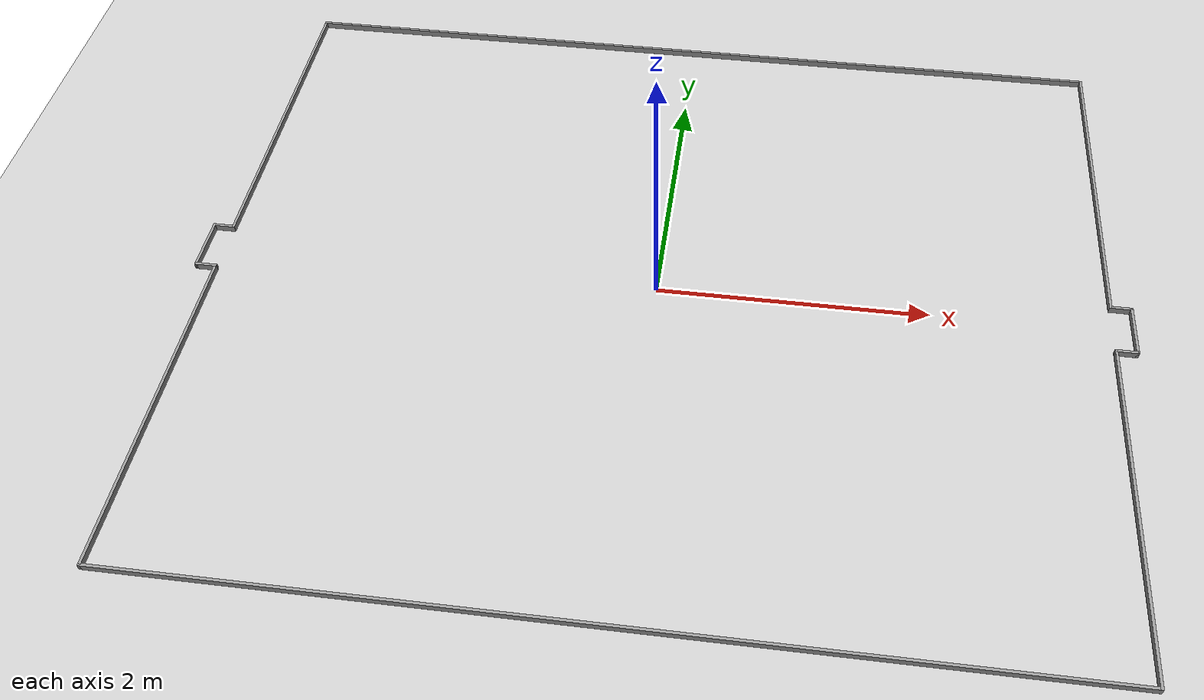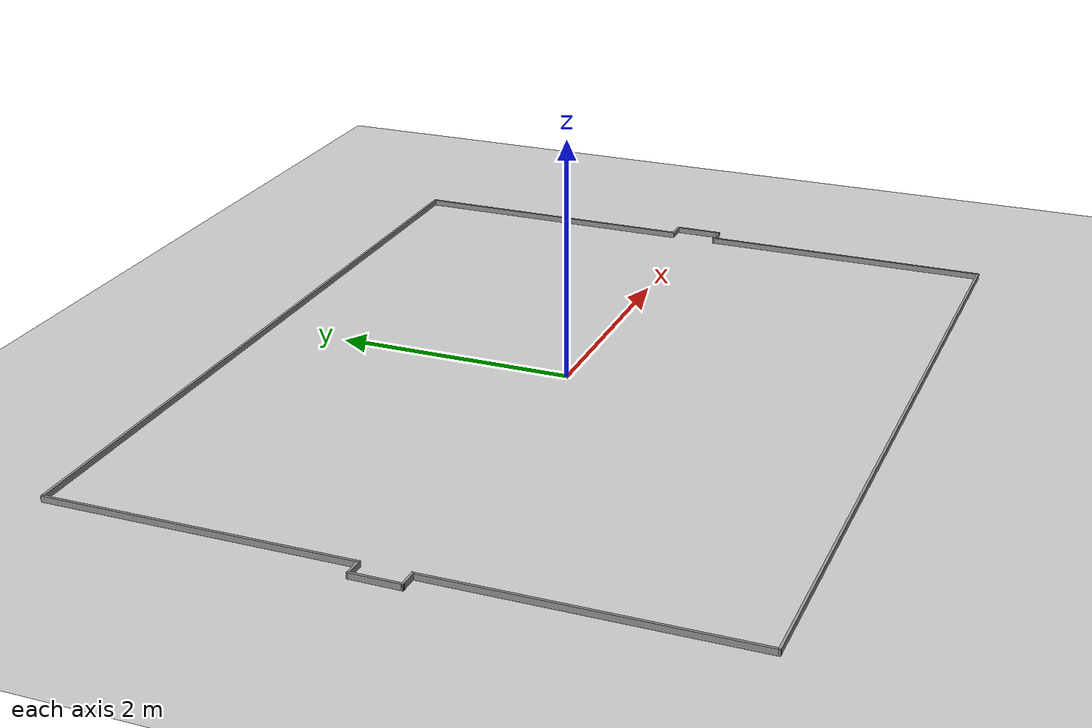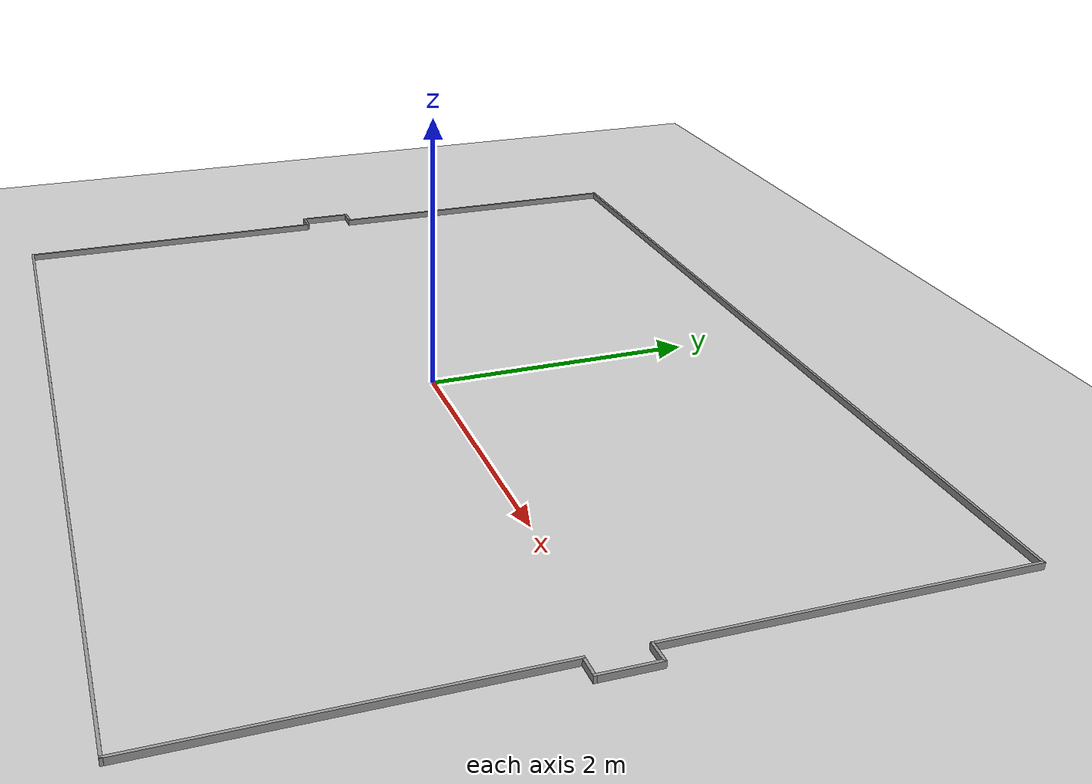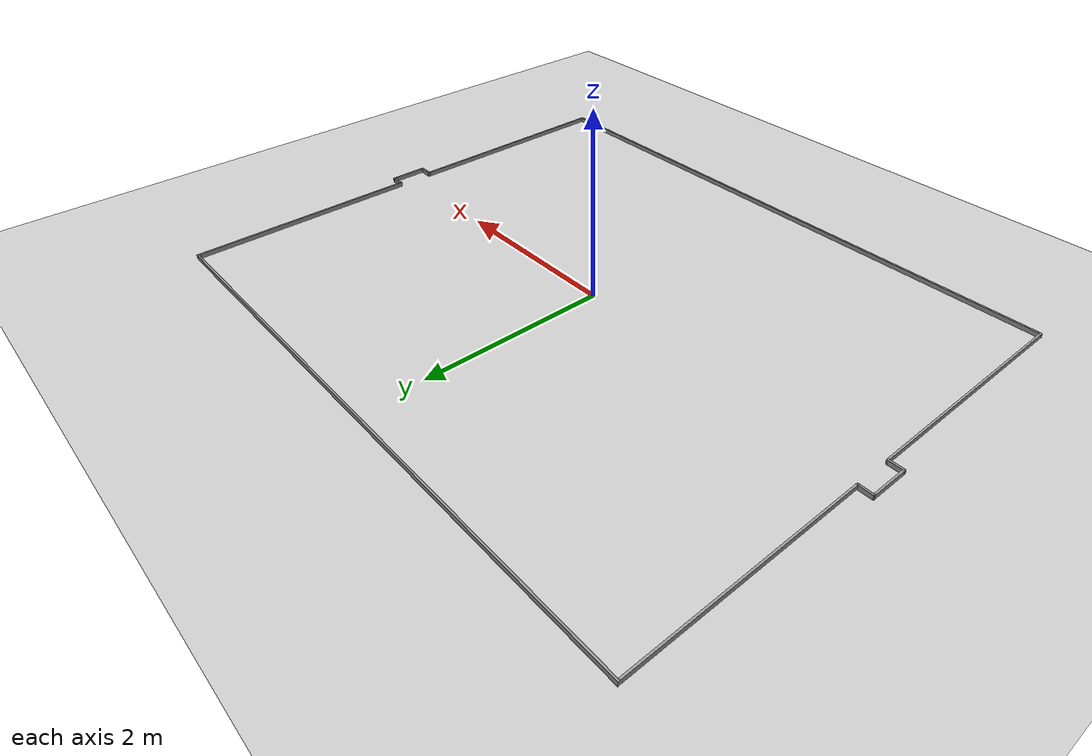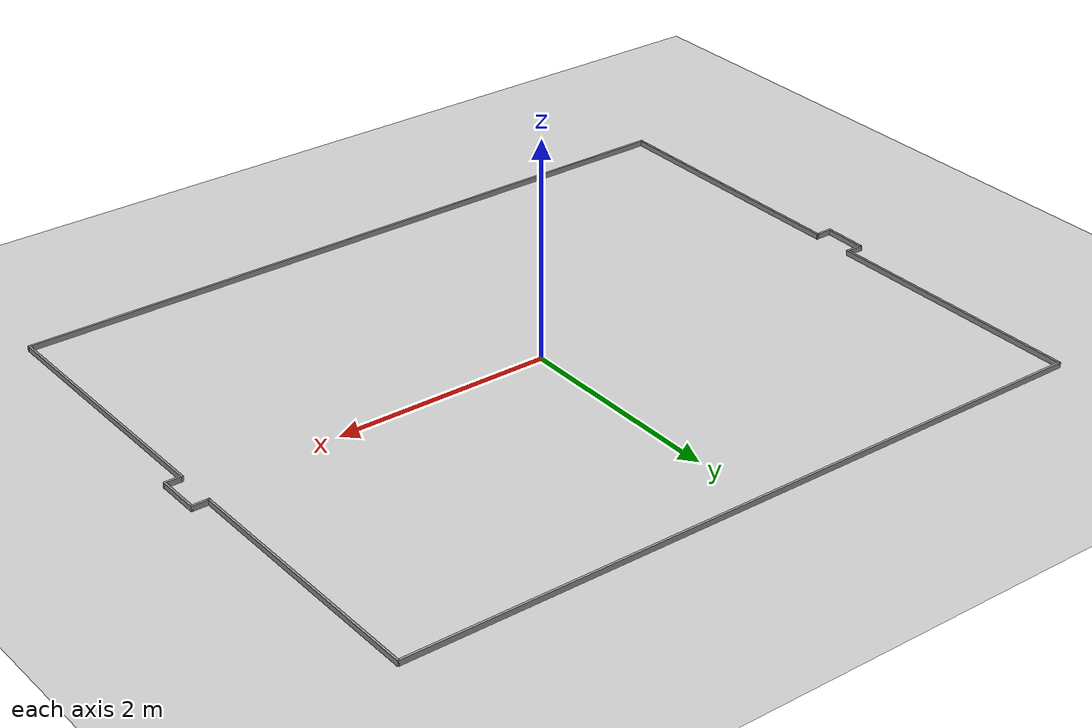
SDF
<?xml version="1.0"?>
<sdf version='1.6'>
  <world name='vsss_environment'>

    <!-- Fonte de luz -->
    <light name='sun' type='directional'>
      <cast_shadows>0</cast_shadows>
      <pose frame=''>0 0 10 0 -0 0</pose>
      <diffuse>0.8 0.8 0.8 1</diffuse>
      <specular>0.2 0.2 0.2 1</specular>

      <attenuation>
        <range>1000</range>
        <constant>0.9</constant>
        <linear>0.01</linear>
        <quadratic>0.001</quadratic>
      </attenuation>

      <direction>-0.5 0.1 -0.9</direction>
    </light>

    <!-- Interface -->
    <gui fullscreen='0'>
      <camera name='user_camera'>
        <pose frame=''>0 -0.2 2.5 0 1.50 1.57</pose>
        <view_controller>orbit</view_controller>
        <projection_type>perspective</projection_type>
      </camera>
    </gui>

    <!-- Terreno plano -->
    <model name='ground_plane'>
      <static>1</static>
      <link name='link'>
        <collision name='collision'>
          <geometry>
            <plane>
              <normal>0 0 1</normal>
              <size>100 100</size>
            </plane>
          </geometry>
          <surface>
            <friction>
              <ode>
                <mu>0.5</mu>
                <mu2>0.5</mu2>
              </ode>
              <torsional>
                <ode/>
              </torsional>
            </friction>
            <contact>
              <ode/>
            </contact>
            <bounce/>
          </surface>
          <max_contacts>10</max_contacts>
        </collision>
        <visual name='visual'>
          <cast_shadows>0</cast_shadows>
          <geometry>
            <plane>
              <normal>0 0 1</normal>
              <size>100 100</size>
            </plane>
          </geometry>
          <material>
            <script>
              <uri>file://media/materials/scripts/gazebo.material</uri>
              <name>Gazebo/Gray</name>
            </script>
          </material>
        </visual>
        <self_collide>0</self_collide>
        <enable_wind>0</enable_wind>
        <kinematic>0</kinematic>
      </link>
    </model>

    <gravity>0 0 -9.8</gravity>
    <magnetic_field>6e-06 2.3e-05 -4.2e-05</magnetic_field>
    <atmosphere type='adiabatic'/>

    <physics name='default_physics' default='0' type='ode'>
      <max_step_size>0.001</max_step_size>
      <real_time_factor>1</real_time_factor>
      <real_time_update_rate>1000</real_time_update_rate>
    </physics>

    <scene>
      <ambient>0.4 0.4 0.4 1</ambient>
      <background>0.7 0.7 0.7 1</background>
      <shadows>0</shadows>
    </scene>

    <spherical_coordinates>
      <surface_model>EARTH_WGS84</surface_model>
      <latitude_deg>0</latitude_deg>
      <longitude_deg>0</longitude_deg>
      <elevation>0</elevation>
      <heading_deg>0</heading_deg>
    </spherical_coordinates>

    <!-- IEEE Very Small Size Soccer Field -->
    <include>
        <pose>0 0 0 0 0 0</pose>
        <uri>model://vsss_field_goal</uri>
        <name>field_walls</name>
        <static>true</static>
    </include>

    <!-- IEEE Very Small Size Soccer Ball -->
    <include>
        <pose>0 1 0 0 0 0</pose>
        <uri>model://vsss_ball</uri>
        <name>ball</name>
        <static>false</static>
    </include>

  </world>
</sdf>

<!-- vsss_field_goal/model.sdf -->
<sdf version='1.6'>
  <model name='vsss_field_goal'>
    <pose frame=''>-0.001537 -5e-06 0 0 -0 0</pose>
    <link name='Wall_0'>
      <collision name='Wall_0_Collision'>
        <geometry>
          <box>
            <size>6.62 0.02 0.05</size>
          </box>
        </geometry>
        <pose frame=''>0 0 0.025 0 -0 0</pose>
      </collision>
      <visual name='Wall_0_Visual'>
        <pose frame=''>0 0 0.025 0 -0 0</pose>
        <geometry>
          <box>
            <size>6.62 0.02 0.05</size>
          </box>
        </geometry>
        <material>
          <script>
            <uri>file://media/materials/scripts/gazebo.material</uri>
            <name>Gazebo/Grey</name>
          </script>
          <ambient>1 1 1 1</ambient>
        </material>
        <meta>
          <layer>0</layer>
        </meta>
      </visual>
      <pose frame=''>0.001537 2.70001 0 0 -0 0</pose>
    </link>
    <link name='Wall_1'>
      <collision name='Wall_1_Collision'>
        <geometry>
          <box>
            <size>2.52 0.02 0.05</size>
          </box>
        </geometry>
        <pose frame=''>0 0 0.025 0 -0 0</pose>
      </collision>
      <visual name='Wall_1_Visual'>
        <pose frame=''>0 0 0.025 0 -0 0</pose>
        <geometry>
          <box>
            <size>2.52 0.02 0.05</size>
          </box>
        </geometry>
        <material>
          <script>
            <uri>file://media/materials/scripts/gazebo.material</uri>
            <name>Gazebo/Grey</name>
          </script>
          <ambient>1 1 1 1</ambient>
        </material>
        <meta>
          <layer>0</layer>
        </meta>
      </visual>
      <pose frame=''>3.30154 1.45001 0 0 -0 -1.5708</pose>
    </link>
    <link name='Wall_10'>
      <collision name='Wall_10_Collision'>
        <geometry>
          <box>
            <size>0.17 0.02 0.05</size>
          </box>
        </geometry>
        <pose frame=''>0 0 0.025 0 -0 0</pose>
      </collision>
      <visual name='Wall_10_Visual'>
        <pose frame=''>0 0 0.025 0 -0 0</pose>
        <geometry>
          <box>
            <size>0.17 0.02 0.05</size>
          </box>
        </geometry>
        <material>
          <script>
            <uri>file://media/materials/scripts/gazebo.material</uri>
            <name>Gazebo/Grey</name>
          </script>
          <ambient>1 1 1 1</ambient>
        </material>
        <meta>
          <layer>0</layer>
        </meta>
      </visual>
      <pose frame=''>-3.37346 0.200005 0 0 -0 0</pose>
    </link>
    <link name='Wall_11'>
      <collision name='Wall_11_Collision'>
        <geometry>
          <box>
            <size>2.52 0.02 0.05</size>
          </box>
        </geometry>
        <pose frame=''>0 0 0.025 0 -0 0</pose>
      </collision>
      <visual name='Wall_11_Visual'>
        <pose frame=''>0 0 0.025 0 -0 0</pose>
        <geometry>
          <box>
            <size>2.52 0.02 0.05</size>
          </box>
        </geometry>
        <material>
          <script>
            <uri>file://media/materials/scripts/gazebo.material</uri>
            <name>Gazebo/Grey</name>
          </script>
          <ambient>1 1 1 1</ambient>
        </material>
        <meta>
          <layer>0</layer>
        </meta>
      </visual>
      <pose frame=''>-3.29846 1.45001 0 0 -0 1.5708</pose>
    </link>
    <link name='Wall_2'>
      <collision name='Wall_2_Collision'>
        <geometry>
          <box>
            <size>0.17 0.02 0.05</size>
          </box>
        </geometry>
        <pose frame=''>0 0 0.025 0 -0 0</pose>
      </collision>
      <visual name='Wall_2_Visual'>
        <pose frame=''>0 0 0.025 0 -0 0</pose>
        <geometry>
          <box>
            <size>0.17 0.02 0.05</size>
          </box>
        </geometry>
        <material>
          <script>
            <uri>file://media/materials/scripts/gazebo.material</uri>
            <name>Gazebo/Grey</name>
          </script>
          <ambient>1 1 1 1</ambient>
        </material>
        <meta>
          <layer>0</layer>
        </meta>
      </visual>
      <pose frame=''>3.37654 0.200005 0 0 -0 0</pose>
    </link>
    <link name='Wall_3'>
      <collision name='Wall_3_Collision'>
        <geometry>
          <box>
            <size>0.42 0.02 0.05</size>
          </box>
        </geometry>
        <pose frame=''>0 0 0.025 0 -0 0</pose>
      </collision>
      <visual name='Wall_3_Visual'>
        <pose frame=''>0 0 0.025 0 -0 0</pose>
        <geometry>
          <box>
            <size>0.42 0.02 0.05</size>
          </box>
        </geometry>
        <material>
          <script>
            <uri>file://media/materials/scripts/gazebo.material</uri>
            <name>Gazebo/Grey</name>
          </script>
          <ambient>1 1 1 1</ambient>
        </material>
        <meta>
          <layer>0</layer>
        </meta>
      </visual>
      <pose frame=''>3.45154 5e-06 0 0 -0 -1.5708</pose>
    </link>
    <link name='Wall_4'>
      <collision name='Wall_4_Collision'>
        <geometry>
          <box>
            <size>0.17 0.02 0.05</size>
          </box>
        </geometry>
        <pose frame=''>0 0 0.025 0 -0 0</pose>
      </collision>
      <visual name='Wall_4_Visual'>
        <pose frame=''>0 0 0.025 0 -0 0</pose>
        <geometry>
          <box>
            <size>0.17 0.02 0.05</size>
          </box>
        </geometry>
        <material>
          <script>
            <uri>file://media/materials/scripts/gazebo.material</uri>
            <name>Gazebo/Grey</name>
          </script>
          <ambient>1 1 1 1</ambient>
        </material>
        <meta>
          <layer>0</layer>
        </meta>
      </visual>
      <pose frame=''>3.37654 -0.199995 0 0 -0 3.14159</pose>
    </link>
    <link name='Wall_5'>
      <collision name='Wall_5_Collision'>
        <geometry>
          <box>
            <size>2.52 0.02 0.05</size>
          </box>
        </geometry>
        <pose frame=''>0 0 0.025 0 -0 0</pose>
      </collision>
      <visual name='Wall_5_Visual'>
        <pose frame=''>0 0 0.025 0 -0 0</pose>
        <geometry>
          <box>
            <size>2.52 0.02 0.05</size>
          </box>
        </geometry>
        <material>
          <script>
            <uri>file://media/materials/scripts/gazebo.material</uri>
            <name>Gazebo/Grey</name>
          </script>
          <ambient>1 1 1 1</ambient>
        </material>
        <meta>
          <layer>0</layer>
        </meta>
      </visual>
      <pose frame=''>3.30154 -1.44999 0 0 -0 -1.5708</pose>
    </link>
    <link name='Wall_6'>
      <collision name='Wall_6_Collision'>
        <geometry>
          <box>
            <size>6.62 0.02 0.05</size>
          </box>
        </geometry>
        <pose frame=''>0 0 0.025 0 -0 0</pose>
      </collision>
      <visual name='Wall_6_Visual'>
        <pose frame=''>0 0 0.025 0 -0 0</pose>
        <geometry>
          <box>
            <size>6.62 0.02 0.05</size>
          </box>
        </geometry>
        <material>
          <script>
            <uri>file://media/materials/scripts/gazebo.material</uri>
            <name>Gazebo/Grey</name>
          </script>
          <ambient>1 1 1 1</ambient>
        </material>
        <meta>
          <layer>0</layer>
        </meta>
      </visual>
      <pose frame=''>0.001537 -2.69999 0 0 -0 3.14159</pose>
    </link>
    <link name='Wall_7'>
      <collision name='Wall_7_Collision'>
        <geometry>
          <box>
            <size>2.52 0.02 0.05</size>
          </box>
        </geometry>
        <pose frame=''>0 0 0.025 0 -0 0</pose>
      </collision>
      <visual name='Wall_7_Visual'>
        <pose frame=''>0 0 0.025 0 -0 0</pose>
        <geometry>
          <box>
            <size>2.52 0.02 0.05</size>
          </box>
        </geometry>
        <material>
          <script>
            <uri>file://media/materials/scripts/gazebo.material</uri>
            <name>Gazebo/Grey</name>
          </script>
          <ambient>1 1 1 1</ambient>
        </material>
        <meta>
          <layer>0</layer>
        </meta>
      </visual>
      <pose frame=''>-3.29996 -1.44999 0 0 -0 1.572</pose>
    </link>
    <link name='Wall_8'>
      <collision name='Wall_8_Collision'>
        <geometry>
          <box>
            <size>0.17 0.02 0.05</size>
          </box>
        </geometry>
        <pose frame=''>0 0 0.025 0 -0 0</pose>
      </collision>
      <visual name='Wall_8_Visual'>
        <pose frame=''>0 0 0.025 0 -0 0</pose>
        <geometry>
          <box>
            <size>0.17 0.02 0.05</size>
          </box>
        </geometry>
        <material>
          <script>
            <uri>file://media/materials/scripts/gazebo.material</uri>
            <name>Gazebo/Grey</name>
          </script>
          <ambient>1 1 1 1</ambient>
        </material>
        <meta>
          <layer>0</layer>
        </meta>
      </visual>
      <pose frame=''>-3.37646 -0.199995 0 0 -0 3.14159</pose>
    </link>
    <link name='Wall_9'>
      <collision name='Wall_9_Collision'>
        <geometry>
          <box>
            <size>0.42 0.02 0.05</size>
          </box>
        </geometry>
        <pose frame=''>0 0 0.025 0 -0 0</pose>
      </collision>
      <visual name='Wall_9_Visual'>
        <pose frame=''>0 0 0.025 0 -0 0</pose>
        <geometry>
          <box>
            <size>0.42 0.02 0.05</size>
          </box>
        </geometry>
        <material>
          <script>
            <uri>file://media/materials/scripts/gazebo.material</uri>
            <name>Gazebo/Grey</name>
          </script>
          <ambient>1 1 1 1</ambient>
        </material>
        <meta>
          <layer>0</layer>
        </meta>
      </visual>
      <pose frame=''>-3.44996 5e-06 0 0 -0 1.5633</pose>
    </link>
    <static>1</static>
  </model>
</sdf>

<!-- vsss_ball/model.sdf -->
<sdf version='1.6'>

  <model name='vsss_ball'>
    <link name='ball'>

      <pose frame=''>0 0 0 0 0 0</pose>
      <self_collide>0</self_collide>
      <enable_wind>0</enable_wind>
      <kinematic>0</kinematic>
      <gravity>1</gravity>

      <inertial>
        <mass>0.04593</mass>
        <pose frame=''>0 0 0 0 0 0</pose>
        <inertia>
          <ixx>0.000008363</ixx>
          <iyy>0.000008363</iyy>
          <izz>0.000008363</izz>
          <ixy>0</ixy>
          <ixz>0</ixz>
          <iyz>0</iyz>
        </inertia>
      </inertial>

      <visual name='visual'>
        <pose frame=''>0 0 0 0 0 0</pose>
        <geometry>
          <sphere>
            <radius>0.021335</radius>
          </sphere>
        </geometry>

        <material>
          <script>
            <uri>file://media/materials/scripts/gazebo.material</uri>
            <name>Gazebo/RedBright</name>
          </script>
        </material>
        <transparency>0</transparency>
        <cast_shadows>1</cast_shadows>
      </visual>

      <collision name='collision'>
        <laser_retro>0</laser_retro>
        <max_contacts>10</max_contacts>
        <pose frame=''>0 0 0 0 0 0</pose>

        <geometry>
          <sphere>
            <radius>0.021335</radius>
          </sphere>
        </geometry>
        <surface>

          <friction>
            <ode>
              <mu>0.5</mu>
              <mu2>0.5</mu2>
              <fdir1>0 0 0</fdir1>
              <slip1>0</slip1>
              <slip2>0</slip2>
            </ode>
            <torsional>
              <coefficient>1</coefficient>
              <patch_radius>0.05</patch_radius>
              <surface_radius>0</surface_radius>
              <use_patch_radius>1</use_patch_radius>
              <ode>
                <slip>0</slip>
              </ode>
            </torsional>
          </friction>

          <bounce>
            <restitution_coefficient>0.05</restitution_coefficient>
            <threshold>10</threshold>
          </bounce>

          <contact>
            <collide_without_contact>0</collide_without_contact>
            <collide_without_contact_bitmask>1</collide_without_contact_bitmask>
            <collide_bitmask>1</collide_bitmask>
            <ode>
              <soft_cfm>0</soft_cfm>
              <soft_erp>0.2</soft_erp>
              <kp>1e+13</kp>
              <kd>1</kd>
              <max_vel>0.01</max_vel>
              <min_depth>0</min_depth>
            </ode>
            <bullet>
              <split_impulse>1</split_impulse>
              <split_impulse_penetration_threshold>-0.01</split_impulse_penetration_threshold>
              <soft_cfm>0</soft_cfm>
              <soft_erp>0.2</soft_erp>
              <kp>1e+13</kp>
              <kd>1</kd>
            </bullet>
          </contact>

        </surface>
      </collision>
    </link>
    <static>0</static>
    <allow_auto_disable>1</allow_auto_disable>

  </model>
</sdf>
